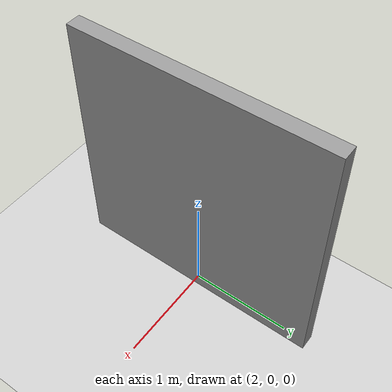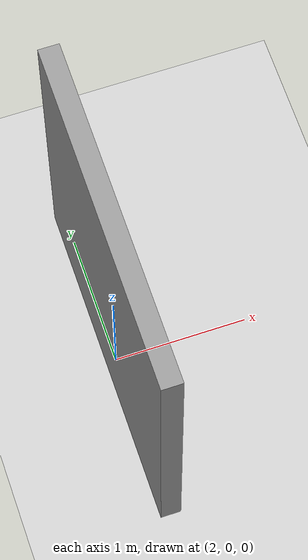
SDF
<?xml version="1.0" ?>
<sdf version="1.4">
  <world name="default">

    <include>
      <uri>model://sun</uri>
    </include>

    <include>
      <uri>model://ground_plane</uri>
    </include>

    <include>
      <uri>model://frontWall</uri>
      <pose>2 0 0 0 0 0</pose>
    </include>

  </world>
</sdf>

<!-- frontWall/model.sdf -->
<sdf version='1.6'>
  <model name='frontWall'>
    <pose frame=''>-2.04 0.025 0 0 -0 0</pose>
    <link name='Wall_0'>
      <collision name='Wall_0_Collision'>
        <geometry>
          <box>
            <size>2.5 0.15 2.5</size>
          </box>
        </geometry>
        <pose frame=''>0 0 1.25 0 -0 0</pose>
      </collision>
      <visual name='Wall_0_Visual'>
        <pose frame=''>0 0 1.25 0 -0 0</pose>
        <geometry>
          <box>
            <size>2.5 0.15 2.5</size>
          </box>
        </geometry>
        <material>
          <script>
            <uri>file://media/materials/scripts/gazebo.material</uri>
            <name>Gazebo/Grey</name>
          </script>
          <ambient>1 1 1 1</ambient>
        </material>
        <meta>
          <layer>0</layer>
        </meta>
      </visual>
      <pose frame=''>-0 0 0 0 -0 1.5708</pose>
    </link>
    <static>1</static>
  </model>
</sdf>
